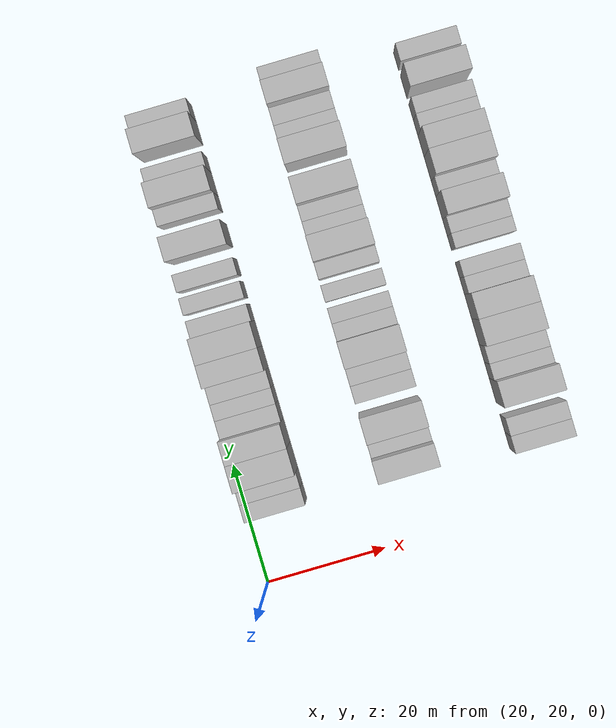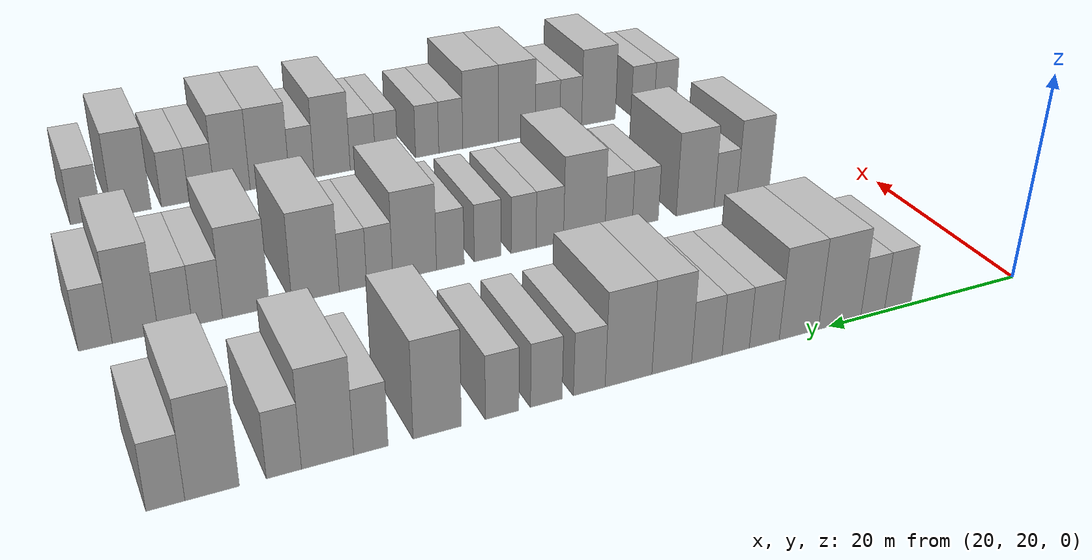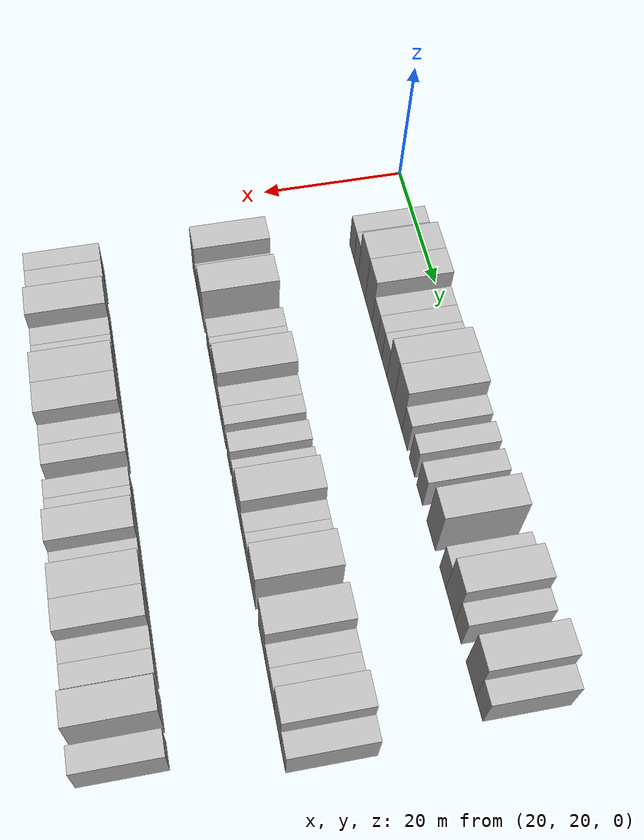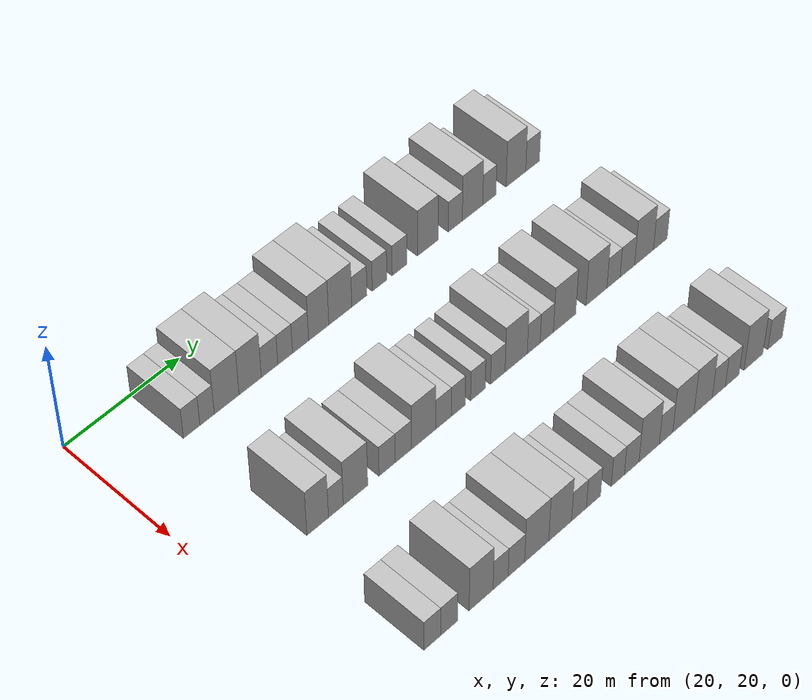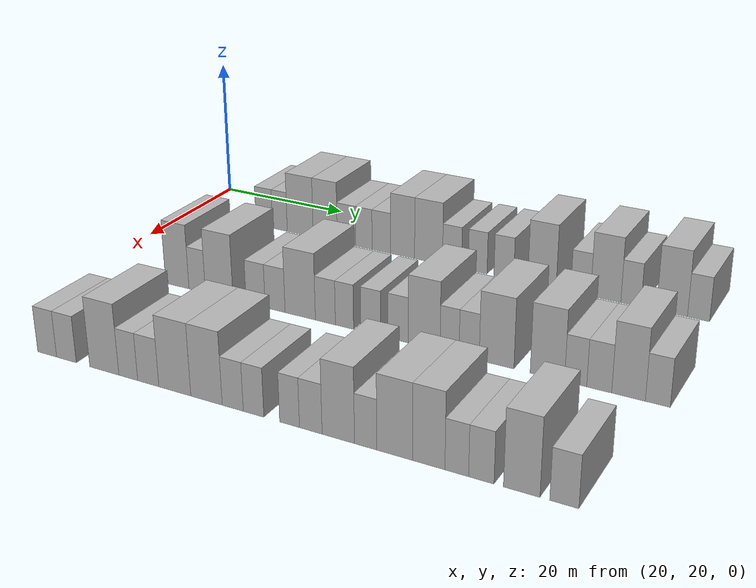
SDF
<sdf version="1.6">
 <world name="default">
  <model name="building_75">
   <static>1</static>
   <pose>25.0000 32.8421 0 0.000000 0.000000 0.000000</pose>
   <link name="link">
    <pose>0 0 3.00 0 0 0</pose>
    <collision name="collision"><geometry><box><size>10.0000 2.8491 6.0000</size></box></geometry></collision>
    <visual name="visual">
     <cast_shadows>0</cast_shadows>
     <geometry><box><size>10.0000 2.8491 6.0000</size></box></geometry>
     <material>
      <script>
       <uri>model://HANNAS_wall/materials/scripts</uri>
       <uri>model://HANNAS_wall/materials/textures</uri>
       <name>vrc/HANNAS_wall</name>
      </script>
     </material>
    </visual>
   </link>
  </model>
  <model name="building_76">
   <static>1</static>
   <pose>25.0000 35.5147 0 0.000000 0.000000 0.000000</pose>
   <link name="link">
    <pose>0 0 3.00 0 0 0</pose>
    <collision name="collision"><geometry><box><size>10.0000 2.4961 6.0000</size></box></geometry></collision>
    <visual name="visual">
     <cast_shadows>0</cast_shadows>
     <geometry><box><size>10.0000 2.4961 6.0000</size></box></geometry>
     <material>
      <script>
       <uri>model://HANNAS_wall/materials/scripts</uri>
       <uri>model://HANNAS_wall/materials/textures</uri>
       <name>vrc/HANNAS_wall</name>
      </script>
     </material>
    </visual>
   </link>
  </model>
  <model name="building_77">
   <static>1</static>
   <pose>25.0000 38.9422 0 0.000000 0.000000 0.000000</pose>
   <link name="link">
    <pose>0 0 4.50 0 0 0</pose>
    <collision name="collision"><geometry><box><size>10.0000 4.3588 9.0000</size></box></geometry></collision>
    <visual name="visual">
     <cast_shadows>0</cast_shadows>
     <geometry><box><size>10.0000 4.3588 9.0000</size></box></geometry>
     <material>
      <script>
       <uri>model://HANNAS_wall/materials/scripts</uri>
       <uri>model://HANNAS_wall/materials/textures</uri>
       <name>vrc/HANNAS_wall</name>
      </script>
     </material>
    </visual>
   </link>
  </model>
  <model name="building_78">
   <static>1</static>
   <pose>25.0000 43.1015 0 0.000000 0.000000 0.000000</pose>
   <link name="link">
    <pose>0 0 4.50 0 0 0</pose>
    <collision name="collision"><geometry><box><size>10.0000 3.9598 9.0000</size></box></geometry></collision>
    <visual name="visual">
     <cast_shadows>0</cast_shadows>
     <geometry><box><size>10.0000 3.9598 9.0000</size></box></geometry>
     <material>
      <script>
       <uri>model://HANNAS_wall/materials/scripts</uri>
       <uri>model://HANNAS_wall/materials/textures</uri>
       <name>vrc/HANNAS_wall</name>
      </script>
     </material>
    </visual>
   </link>
  </model>
  <model name="building_79">
   <static>1</static>
   <pose>25.0000 46.5578 0 0.000000 0.000000 0.000000</pose>
   <link name="link">
    <pose>0 0 3.00 0 0 0</pose>
    <collision name="collision"><geometry><box><size>10.0000 2.9530 6.0000</size></box></geometry></collision>
    <visual name="visual">
     <cast_shadows>0</cast_shadows>
     <geometry><box><size>10.0000 2.9530 6.0000</size></box></geometry>
     <material>
      <script>
       <uri>model://HANNAS_wall/materials/scripts</uri>
       <uri>model://HANNAS_wall/materials/textures</uri>
       <name>vrc/HANNAS_wall</name>
      </script>
     </material>
    </visual>
   </link>
  </model>
  <model name="building_80">
   <static>1</static>
   <pose>25.0000 49.3571 0 0.000000 0.000000 0.000000</pose>
   <link name="link">
    <pose>0 0 3.00 0 0 0</pose>
    <collision name="collision"><geometry><box><size>10.0000 2.6455 6.0000</size></box></geometry></collision>
    <visual name="visual">
     <cast_shadows>0</cast_shadows>
     <geometry><box><size>10.0000 2.6455 6.0000</size></box></geometry>
     <material>
      <script>
       <uri>model://HANNAS_wall/materials/scripts</uri>
       <uri>model://HANNAS_wall/materials/textures</uri>
       <name>vrc/HANNAS_wall</name>
      </script>
     </material>
    </visual>
   </link>
  </model>
  <model name="building_81">
   <static>1</static>
   <pose>25.0000 52.1397 0 0.000000 0.000000 0.000000</pose>
   <link name="link">
    <pose>0 0 3.00 0 0 0</pose>
    <collision name="collision"><geometry><box><size>10.0000 2.9199 6.0000</size></box></geometry></collision>
    <visual name="visual">
     <cast_shadows>0</cast_shadows>
     <geometry><box><size>10.0000 2.9199 6.0000</size></box></geometry>
     <material>
      <script>
       <uri>model://HANNAS_wall/materials/scripts</uri>
       <uri>model://HANNAS_wall/materials/textures</uri>
       <name>vrc/HANNAS_wall</name>
      </script>
     </material>
    </visual>
   </link>
  </model>
  <model name="building_82">
   <static>1</static>
   <pose>25.0000 55.4530 0 0.000000 0.000000 0.000000</pose>
   <link name="link">
    <pose>0 0 4.50 0 0 0</pose>
    <collision name="collision"><geometry><box><size>10.0000 3.7066 9.0000</size></box></geometry></collision>
    <visual name="visual">
     <cast_shadows>0</cast_shadows>
     <geometry><box><size>10.0000 3.7066 9.0000</size></box></geometry>
     <material>
      <script>
       <uri>model://HANNAS_wall/materials/scripts</uri>
       <uri>model://HANNAS_wall/materials/textures</uri>
       <name>vrc/HANNAS_wall</name>
      </script>
     </material>
    </visual>
   </link>
  </model>
  <model name="building_83">
   <static>1</static>
   <pose>25.0000 59.4381 0 0.000000 0.000000 0.000000</pose>
   <link name="link">
    <pose>0 0 4.50 0 0 0</pose>
    <collision name="collision"><geometry><box><size>10.0000 4.2636 9.0000</size></box></geometry></collision>
    <visual name="visual">
     <cast_shadows>0</cast_shadows>
     <geometry><box><size>10.0000 4.2636 9.0000</size></box></geometry>
     <material>
      <script>
       <uri>model://HANNAS_wall/materials/scripts</uri>
       <uri>model://HANNAS_wall/materials/textures</uri>
       <name>vrc/HANNAS_wall</name>
      </script>
     </material>
    </visual>
   </link>
  </model>
  <model name="building_84">
   <static>1</static>
   <pose>25.0000 62.9826 0 0.000000 0.000000 0.000000</pose>
   <link name="link">
    <pose>0 0 3.00 0 0 0</pose>
    <collision name="collision"><geometry><box><size>10.0000 2.8254 6.0000</size></box></geometry></collision>
    <visual name="visual">
     <cast_shadows>0</cast_shadows>
     <geometry><box><size>10.0000 2.8254 6.0000</size></box></geometry>
     <material>
      <script>
       <uri>model://HANNAS_wall/materials/scripts</uri>
       <uri>model://HANNAS_wall/materials/textures</uri>
       <name>vrc/HANNAS_wall</name>
      </script>
     </material>
    </visual>
   </link>
  </model>
  <model name="building_85">
   <static>1</static>
   <pose>25.0000 66.7705 0 0.000000 0.000000 0.000000</pose>
   <link name="link">
    <pose>0 0 3.00 0 0 0</pose>
    <collision name="collision"><geometry><box><size>10.0000 2.7503 6.0000</size></box></geometry></collision>
    <visual name="visual">
     <cast_shadows>0</cast_shadows>
     <geometry><box><size>10.0000 2.7503 6.0000</size></box></geometry>
     <material>
      <script>
       <uri>model://HANNAS_wall/materials/scripts</uri>
       <uri>model://HANNAS_wall/materials/textures</uri>
       <name>vrc/HANNAS_wall</name>
      </script>
     </material>
    </visual>
   </link>
  </model>
  <model name="building_86">
   <static>1</static>
   <pose>25.0000 70.5676 0 0.000000 0.000000 0.000000</pose>
   <link name="link">
    <pose>0 0 3.00 0 0 0</pose>
    <collision name="collision"><geometry><box><size>10.0000 2.8439 6.0000</size></box></geometry></collision>
    <visual name="visual">
     <cast_shadows>0</cast_shadows>
     <geometry><box><size>10.0000 2.8439 6.0000</size></box></geometry>
     <material>
      <script>
       <uri>model://HANNAS_wall/materials/scripts</uri>
       <uri>model://HANNAS_wall/materials/textures</uri>
       <name>vrc/HANNAS_wall</name>
      </script>
     </material>
    </visual>
   </link>
  </model>
  <model name="building_87">
   <static>1</static>
   <pose>25.0000 75.9713 0 0.000000 0.000000 0.000000</pose>
   <link name="link">
    <pose>0 0 4.50 0 0 0</pose>
    <collision name="collision"><geometry><box><size>10.0000 3.9636 9.0000</size></box></geometry></collision>
    <visual name="visual">
     <cast_shadows>0</cast_shadows>
     <geometry><box><size>10.0000 3.9636 9.0000</size></box></geometry>
     <material>
      <script>
       <uri>model://HANNAS_wall/materials/scripts</uri>
       <uri>model://HANNAS_wall/materials/textures</uri>
       <name>vrc/HANNAS_wall</name>
      </script>
     </material>
    </visual>
   </link>
  </model>
  <model name="building_88">
   <static>1</static>
   <pose>25.0000 81.3127 0 0.000000 0.000000 0.000000</pose>
   <link name="link">
    <pose>0 0 3.00 0 0 0</pose>
    <collision name="collision"><geometry><box><size>10.0000 2.7192 6.0000</size></box></geometry></collision>
    <visual name="visual">
     <cast_shadows>0</cast_shadows>
     <geometry><box><size>10.0000 2.7192 6.0000</size></box></geometry>
     <material>
      <script>
       <uri>model://HANNAS_wall/materials/scripts</uri>
       <uri>model://HANNAS_wall/materials/textures</uri>
       <name>vrc/HANNAS_wall</name>
      </script>
     </material>
    </visual>
   </link>
  </model>
  <model name="building_89">
   <static>1</static>
   <pose>25.0000 84.6875 0 0.000000 0.000000 0.000000</pose>
   <link name="link">
    <pose>0 0 4.50 0 0 0</pose>
    <collision name="collision"><geometry><box><size>10.0000 4.0303 9.0000</size></box></geometry></collision>
    <visual name="visual">
     <cast_shadows>0</cast_shadows>
     <geometry><box><size>10.0000 4.0303 9.0000</size></box></geometry>
     <material>
      <script>
       <uri>model://HANNAS_wall/materials/scripts</uri>
       <uri>model://HANNAS_wall/materials/textures</uri>
       <name>vrc/HANNAS_wall</name>
      </script>
     </material>
    </visual>
   </link>
  </model>
  <model name="building_90">
   <static>1</static>
   <pose>25.0000 88.0320 0 0.000000 0.000000 0.000000</pose>
   <link name="link">
    <pose>0 0 3.00 0 0 0</pose>
    <collision name="collision"><geometry><box><size>10.0000 2.6586 6.0000</size></box></geometry></collision>
    <visual name="visual">
     <cast_shadows>0</cast_shadows>
     <geometry><box><size>10.0000 2.6586 6.0000</size></box></geometry>
     <material>
      <script>
       <uri>model://HANNAS_wall/materials/scripts</uri>
       <uri>model://HANNAS_wall/materials/textures</uri>
       <name>vrc/HANNAS_wall</name>
      </script>
     </material>
    </visual>
   </link>
  </model>
  <model name="building_91">
   <static>1</static>
   <pose>25.0000 93.3398 0 0.000000 0.000000 0.000000</pose>
   <link name="link">
    <pose>0 0 4.50 0 0 0</pose>
    <collision name="collision"><geometry><box><size>10.0000 3.9570 9.0000</size></box></geometry></collision>
    <visual name="visual">
     <cast_shadows>0</cast_shadows>
     <geometry><box><size>10.0000 3.9570 9.0000</size></box></geometry>
     <material>
      <script>
       <uri>model://HANNAS_wall/materials/scripts</uri>
       <uri>model://HANNAS_wall/materials/textures</uri>
       <name>vrc/HANNAS_wall</name>
      </script>
     </material>
    </visual>
   </link>
  </model>
  <model name="building_92">
   <static>1</static>
   <pose>25.0000 96.7085 0 0.000000 0.000000 0.000000</pose>
   <link name="link">
    <pose>0 0 3.00 0 0 0</pose>
    <collision name="collision"><geometry><box><size>10.0000 2.7805 6.0000</size></box></geometry></collision>
    <visual name="visual">
     <cast_shadows>0</cast_shadows>
     <geometry><box><size>10.0000 2.7805 6.0000</size></box></geometry>
     <material>
      <script>
       <uri>model://HANNAS_wall/materials/scripts</uri>
       <uri>model://HANNAS_wall/materials/textures</uri>
       <name>vrc/HANNAS_wall</name>
      </script>
     </material>
    </visual>
   </link>
  </model>
  <model name="building_195">
   <static>1</static>
   <pose>47.0000 33.6591 0 0.000000 0.000000 0.000000</pose>
   <link name="link">
    <pose>0 0 4.50 0 0 0</pose>
    <collision name="collision"><geometry><box><size>10.0000 3.7395 9.0000</size></box></geometry></collision>
    <visual name="visual">
     <cast_shadows>0</cast_shadows>
     <geometry><box><size>10.0000 3.7395 9.0000</size></box></geometry>
     <material>
      <script>
       <uri>model://HANNAS_wall/materials/scripts</uri>
       <uri>model://HANNAS_wall/materials/textures</uri>
       <name>vrc/HANNAS_wall</name>
      </script>
     </material>
    </visual>
   </link>
  </model>
  <model name="building_196">
   <static>1</static>
   <pose>47.0000 36.8260 0 0.000000 0.000000 0.000000</pose>
   <link name="link">
    <pose>0 0 3.00 0 0 0</pose>
    <collision name="collision"><geometry><box><size>10.0000 2.5942 6.0000</size></box></geometry></collision>
    <visual name="visual">
     <cast_shadows>0</cast_shadows>
     <geometry><box><size>10.0000 2.5942 6.0000</size></box></geometry>
     <material>
      <script>
       <uri>model://HANNAS_wall/materials/scripts</uri>
       <uri>model://HANNAS_wall/materials/textures</uri>
       <name>vrc/HANNAS_wall</name>
      </script>
     </material>
    </visual>
   </link>
  </model>
  <model name="building_197">
   <static>1</static>
   <pose>47.0000 40.2798 0 0.000000 0.000000 0.000000</pose>
   <link name="link">
    <pose>0 0 4.50 0 0 0</pose>
    <collision name="collision"><geometry><box><size>10.0000 4.3134 9.0000</size></box></geometry></collision>
    <visual name="visual">
     <cast_shadows>0</cast_shadows>
     <geometry><box><size>10.0000 4.3134 9.0000</size></box></geometry>
     <material>
      <script>
       <uri>model://HANNAS_wall/materials/scripts</uri>
       <uri>model://HANNAS_wall/materials/textures</uri>
       <name>vrc/HANNAS_wall</name>
      </script>
     </material>
    </visual>
   </link>
  </model>
  <model name="building_198">
   <static>1</static>
   <pose>47.0000 45.8721 0 0.000000 0.000000 0.000000</pose>
   <link name="link">
    <pose>0 0 3.00 0 0 0</pose>
    <collision name="collision"><geometry><box><size>10.0000 2.8713 6.0000</size></box></geometry></collision>
    <visual name="visual">
     <cast_shadows>0</cast_shadows>
     <geometry><box><size>10.0000 2.8713 6.0000</size></box></geometry>
     <material>
      <script>
       <uri>model://HANNAS_wall/materials/scripts</uri>
       <uri>model://HANNAS_wall/materials/textures</uri>
       <name>vrc/HANNAS_wall</name>
      </script>
     </material>
    </visual>
   </link>
  </model>
  <model name="building_199">
   <static>1</static>
   <pose>47.0000 48.7853 0 0.000000 0.000000 0.000000</pose>
   <link name="link">
    <pose>0 0 3.00 0 0 0</pose>
    <collision name="collision"><geometry><box><size>10.0000 2.9551 6.0000</size></box></geometry></collision>
    <visual name="visual">
     <cast_shadows>0</cast_shadows>
     <geometry><box><size>10.0000 2.9551 6.0000</size></box></geometry>
     <material>
      <script>
       <uri>model://HANNAS_wall/materials/scripts</uri>
       <uri>model://HANNAS_wall/materials/textures</uri>
       <name>vrc/HANNAS_wall</name>
      </script>
     </material>
    </visual>
   </link>
  </model>
  <model name="building_200">
   <static>1</static>
   <pose>47.0000 52.4722 0 0.000000 0.000000 0.000000</pose>
   <link name="link">
    <pose>0 0 4.50 0 0 0</pose>
    <collision name="collision"><geometry><box><size>10.0000 4.4187 9.0000</size></box></geometry></collision>
    <visual name="visual">
     <cast_shadows>0</cast_shadows>
     <geometry><box><size>10.0000 4.4187 9.0000</size></box></geometry>
     <material>
      <script>
       <uri>model://HANNAS_wall/materials/scripts</uri>
       <uri>model://HANNAS_wall/materials/textures</uri>
       <name>vrc/HANNAS_wall</name>
      </script>
     </material>
    </visual>
   </link>
  </model>
  <model name="building_201">
   <static>1</static>
   <pose>47.0000 56.1122 0 0.000000 0.000000 0.000000</pose>
   <link name="link">
    <pose>0 0 3.00 0 0 0</pose>
    <collision name="collision"><geometry><box><size>10.0000 2.8612 6.0000</size></box></geometry></collision>
    <visual name="visual">
     <cast_shadows>0</cast_shadows>
     <geometry><box><size>10.0000 2.8612 6.0000</size></box></geometry>
     <material>
      <script>
       <uri>model://HANNAS_wall/materials/scripts</uri>
       <uri>model://HANNAS_wall/materials/textures</uri>
       <name>vrc/HANNAS_wall</name>
      </script>
     </material>
    </visual>
   </link>
  </model>
  <model name="building_202">
   <static>1</static>
   <pose>47.0000 58.8248 0 0.000000 0.000000 0.000000</pose>
   <link name="link">
    <pose>0 0 3.00 0 0 0</pose>
    <collision name="collision"><geometry><box><size>10.0000 2.5639 6.0000</size></box></geometry></collision>
    <visual name="visual">
     <cast_shadows>0</cast_shadows>
     <geometry><box><size>10.0000 2.5639 6.0000</size></box></geometry>
     <material>
      <script>
       <uri>model://HANNAS_wall/materials/scripts</uri>
       <uri>model://HANNAS_wall/materials/textures</uri>
       <name>vrc/HANNAS_wall</name>
      </script>
     </material>
    </visual>
   </link>
  </model>
  <model name="building_203">
   <static>1</static>
   <pose>47.0000 62.4689 0 0.000000 0.000000 0.000000</pose>
   <link name="link">
    <pose>0 0 3.00 0 0 0</pose>
    <collision name="collision"><geometry><box><size>10.0000 2.7244 6.0000</size></box></geometry></collision>
    <visual name="visual">
     <cast_shadows>0</cast_shadows>
     <geometry><box><size>10.0000 2.7244 6.0000</size></box></geometry>
     <material>
      <script>
       <uri>model://HANNAS_wall/materials/scripts</uri>
       <uri>model://HANNAS_wall/materials/textures</uri>
       <name>vrc/HANNAS_wall</name>
      </script>
     </material>
    </visual>
   </link>
  </model>
  <model name="building_204">
   <static>1</static>
   <pose>47.0000 66.1981 0 0.000000 0.000000 0.000000</pose>
   <link name="link">
    <pose>0 0 3.00 0 0 0</pose>
    <collision name="collision"><geometry><box><size>10.0000 2.7338 6.0000</size></box></geometry></collision>
    <visual name="visual">
     <cast_shadows>0</cast_shadows>
     <geometry><box><size>10.0000 2.7338 6.0000</size></box></geometry>
     <material>
      <script>
       <uri>model://HANNAS_wall/materials/scripts</uri>
       <uri>model://HANNAS_wall/materials/textures</uri>
       <name>vrc/HANNAS_wall</name>
      </script>
     </material>
    </visual>
   </link>
  </model>
  <model name="building_205">
   <static>1</static>
   <pose>47.0000 69.6799 0 0.000000 0.000000 0.000000</pose>
   <link name="link">
    <pose>0 0 4.50 0 0 0</pose>
    <collision name="collision"><geometry><box><size>10.0000 4.2299 9.0000</size></box></geometry></collision>
    <visual name="visual">
     <cast_shadows>0</cast_shadows>
     <geometry><box><size>10.0000 4.2299 9.0000</size></box></geometry>
     <material>
      <script>
       <uri>model://HANNAS_wall/materials/scripts</uri>
       <uri>model://HANNAS_wall/materials/textures</uri>
       <name>vrc/HANNAS_wall</name>
      </script>
     </material>
    </visual>
   </link>
  </model>
  <model name="building_206">
   <static>1</static>
   <pose>47.0000 73.0305 0 0.000000 0.000000 0.000000</pose>
   <link name="link">
    <pose>0 0 3.00 0 0 0</pose>
    <collision name="collision"><geometry><box><size>10.0000 2.4712 6.0000</size></box></geometry></collision>
    <visual name="visual">
     <cast_shadows>0</cast_shadows>
     <geometry><box><size>10.0000 2.4712 6.0000</size></box></geometry>
     <material>
      <script>
       <uri>model://HANNAS_wall/materials/scripts</uri>
       <uri>model://HANNAS_wall/materials/textures</uri>
       <name>vrc/HANNAS_wall</name>
      </script>
     </material>
    </visual>
   </link>
  </model>
  <model name="building_207">
   <static>1</static>
   <pose>47.0000 75.5539 0 0.000000 0.000000 0.000000</pose>
   <link name="link">
    <pose>0 0 3.00 0 0 0</pose>
    <collision name="collision"><geometry><box><size>10.0000 2.5758 6.0000</size></box></geometry></collision>
    <visual name="visual">
     <cast_shadows>0</cast_shadows>
     <geometry><box><size>10.0000 2.5758 6.0000</size></box></geometry>
     <material>
      <script>
       <uri>model://HANNAS_wall/materials/scripts</uri>
       <uri>model://HANNAS_wall/materials/textures</uri>
       <name>vrc/HANNAS_wall</name>
      </script>
     </material>
    </visual>
   </link>
  </model>
  <model name="building_208">
   <static>1</static>
   <pose>47.0000 79.0236 0 0.000000 0.000000 0.000000</pose>
   <link name="link">
    <pose>0 0 4.50 0 0 0</pose>
    <collision name="collision"><geometry><box><size>10.0000 4.3635 9.0000</size></box></geometry></collision>
    <visual name="visual">
     <cast_shadows>0</cast_shadows>
     <geometry><box><size>10.0000 4.3635 9.0000</size></box></geometry>
     <material>
      <script>
       <uri>model://HANNAS_wall/materials/scripts</uri>
       <uri>model://HANNAS_wall/materials/textures</uri>
       <name>vrc/HANNAS_wall</name>
      </script>
     </material>
    </visual>
   </link>
  </model>
  <model name="building_209">
   <static>1</static>
   <pose>47.0000 85.2866 0 0.000000 0.000000 0.000000</pose>
   <link name="link">
    <pose>0 0 4.50 0 0 0</pose>
    <collision name="collision"><geometry><box><size>10.0000 4.1626 9.0000</size></box></geometry></collision>
    <visual name="visual">
     <cast_shadows>0</cast_shadows>
     <geometry><box><size>10.0000 4.1626 9.0000</size></box></geometry>
     <material>
      <script>
       <uri>model://HANNAS_wall/materials/scripts</uri>
       <uri>model://HANNAS_wall/materials/textures</uri>
       <name>vrc/HANNAS_wall</name>
      </script>
     </material>
    </visual>
   </link>
  </model>
  <model name="building_210">
   <static>1</static>
   <pose>47.0000 88.6798 0 0.000000 0.000000 0.000000</pose>
   <link name="link">
    <pose>0 0 3.00 0 0 0</pose>
    <collision name="collision"><geometry><box><size>10.0000 2.6237 6.0000</size></box></geometry></collision>
    <visual name="visual">
     <cast_shadows>0</cast_shadows>
     <geometry><box><size>10.0000 2.6237 6.0000</size></box></geometry>
     <material>
      <script>
       <uri>model://HANNAS_wall/materials/scripts</uri>
       <uri>model://HANNAS_wall/materials/textures</uri>
       <name>vrc/HANNAS_wall</name>
      </script>
     </material>
    </visual>
   </link>
  </model>
  <model name="building_211">
   <static>1</static>
   <pose>47.0000 91.4454 0 0.000000 0.000000 0.000000</pose>
   <link name="link">
    <pose>0 0 3.00 0 0 0</pose>
    <collision name="collision"><geometry><box><size>10.0000 2.9075 6.0000</size></box></geometry></collision>
    <visual name="visual">
     <cast_shadows>0</cast_shadows>
     <geometry><box><size>10.0000 2.9075 6.0000</size></box></geometry>
     <material>
      <script>
       <uri>model://HANNAS_wall/materials/scripts</uri>
       <uri>model://HANNAS_wall/materials/textures</uri>
       <name>vrc/HANNAS_wall</name>
      </script>
     </material>
    </visual>
   </link>
  </model>
  <model name="building_212">
   <static>1</static>
   <pose>47.0000 94.8217 0 0.000000 0.000000 0.000000</pose>
   <link name="link">
    <pose>0 0 4.50 0 0 0</pose>
    <collision name="collision"><geometry><box><size>10.0000 3.8452 9.0000</size></box></geometry></collision>
    <visual name="visual">
     <cast_shadows>0</cast_shadows>
     <geometry><box><size>10.0000 3.8452 9.0000</size></box></geometry>
     <material>
      <script>
       <uri>model://HANNAS_wall/materials/scripts</uri>
       <uri>model://HANNAS_wall/materials/textures</uri>
       <name>vrc/HANNAS_wall</name>
      </script>
     </material>
    </visual>
   </link>
  </model>
  <model name="building_213">
   <static>1</static>
   <pose>47.0000 98.1438 0 0.000000 0.000000 0.000000</pose>
   <link name="link">
    <pose>0 0 3.00 0 0 0</pose>
    <collision name="collision"><geometry><box><size>10.0000 2.7991 6.0000</size></box></geometry></collision>
    <visual name="visual">
     <cast_shadows>0</cast_shadows>
     <geometry><box><size>10.0000 2.7991 6.0000</size></box></geometry>
     <material>
      <script>
       <uri>model://HANNAS_wall/materials/scripts</uri>
       <uri>model://HANNAS_wall/materials/textures</uri>
       <name>vrc/HANNAS_wall</name>
      </script>
     </material>
    </visual>
   </link>
  </model>
  <model name="building_316">
   <static>1</static>
   <pose>69.0000 31.2672 0 0.000000 0.000000 0.000000</pose>
   <link name="link">
    <pose>0 0 3.00 0 0 0</pose>
    <collision name="collision"><geometry><box><size>10.0000 2.8651 6.0000</size></box></geometry></collision>
    <visual name="visual">
     <cast_shadows>0</cast_shadows>
     <geometry><box><size>10.0000 2.8651 6.0000</size></box></geometry>
     <material>
      <script>
       <uri>model://HANNAS_wall/materials/scripts</uri>
       <uri>model://HANNAS_wall/materials/textures</uri>
       <name>vrc/HANNAS_wall</name>
      </script>
     </material>
    </visual>
   </link>
  </model>
  <model name="building_317">
   <static>1</static>
   <pose>69.0000 34.1753 0 0.000000 0.000000 0.000000</pose>
   <link name="link">
    <pose>0 0 3.00 0 0 0</pose>
    <collision name="collision"><geometry><box><size>10.0000 2.9511 6.0000</size></box></geometry></collision>
    <visual name="visual">
     <cast_shadows>0</cast_shadows>
     <geometry><box><size>10.0000 2.9511 6.0000</size></box></geometry>
     <material>
      <script>
       <uri>model://HANNAS_wall/materials/scripts</uri>
       <uri>model://HANNAS_wall/materials/textures</uri>
       <name>vrc/HANNAS_wall</name>
      </script>
     </material>
    </visual>
   </link>
  </model>
  <model name="building_318">
   <static>1</static>
   <pose>69.0000 39.7602 0 0.000000 0.000000 0.000000</pose>
   <link name="link">
    <pose>0 0 4.50 0 0 0</pose>
    <collision name="collision"><geometry><box><size>10.0000 4.2187 9.0000</size></box></geometry></collision>
    <visual name="visual">
     <cast_shadows>0</cast_shadows>
     <geometry><box><size>10.0000 4.2187 9.0000</size></box></geometry>
     <material>
      <script>
       <uri>model://HANNAS_wall/materials/scripts</uri>
       <uri>model://HANNAS_wall/materials/textures</uri>
       <name>vrc/HANNAS_wall</name>
      </script>
     </material>
    </visual>
   </link>
  </model>
  <model name="building_319">
   <static>1</static>
   <pose>69.0000 43.2076 0 0.000000 0.000000 0.000000</pose>
   <link name="link">
    <pose>0 0 3.00 0 0 0</pose>
    <collision name="collision"><geometry><box><size>10.0000 2.6763 6.0000</size></box></geometry></collision>
    <visual name="visual">
     <cast_shadows>0</cast_shadows>
     <geometry><box><size>10.0000 2.6763 6.0000</size></box></geometry>
     <material>
      <script>
       <uri>model://HANNAS_wall/materials/scripts</uri>
       <uri>model://HANNAS_wall/materials/textures</uri>
       <name>vrc/HANNAS_wall</name>
      </script>
     </material>
    </visual>
   </link>
  </model>
  <model name="building_320">
   <static>1</static>
   <pose>69.0000 46.0286 0 0.000000 0.000000 0.000000</pose>
   <link name="link">
    <pose>0 0 3.00 0 0 0</pose>
    <collision name="collision"><geometry><box><size>10.0000 2.9657 6.0000</size></box></geometry></collision>
    <visual name="visual">
     <cast_shadows>0</cast_shadows>
     <geometry><box><size>10.0000 2.9657 6.0000</size></box></geometry>
     <material>
      <script>
       <uri>model://HANNAS_wall/materials/scripts</uri>
       <uri>model://HANNAS_wall/materials/textures</uri>
       <name>vrc/HANNAS_wall</name>
      </script>
     </material>
    </visual>
   </link>
  </model>
  <model name="building_321">
   <static>1</static>
   <pose>69.0000 49.6975 0 0.000000 0.000000 0.000000</pose>
   <link name="link">
    <pose>0 0 4.50 0 0 0</pose>
    <collision name="collision"><geometry><box><size>10.0000 4.3722 9.0000</size></box></geometry></collision>
    <visual name="visual">
     <cast_shadows>0</cast_shadows>
     <geometry><box><size>10.0000 4.3722 9.0000</size></box></geometry>
     <material>
      <script>
       <uri>model://HANNAS_wall/materials/scripts</uri>
       <uri>model://HANNAS_wall/materials/textures</uri>
       <name>vrc/HANNAS_wall</name>
      </script>
     </material>
    </visual>
   </link>
  </model>
  <model name="building_322">
   <static>1</static>
   <pose>69.0000 53.9767 0 0.000000 0.000000 0.000000</pose>
   <link name="link">
    <pose>0 0 4.50 0 0 0</pose>
    <collision name="collision"><geometry><box><size>10.0000 4.1861 9.0000</size></box></geometry></collision>
    <visual name="visual">
     <cast_shadows>0</cast_shadows>
     <geometry><box><size>10.0000 4.1861 9.0000</size></box></geometry>
     <material>
      <script>
       <uri>model://HANNAS_wall/materials/scripts</uri>
       <uri>model://HANNAS_wall/materials/textures</uri>
       <name>vrc/HANNAS_wall</name>
      </script>
     </material>
    </visual>
   </link>
  </model>
  <model name="building_323">
   <static>1</static>
   <pose>69.0000 57.4448 0 0.000000 0.000000 0.000000</pose>
   <link name="link">
    <pose>0 0 3.00 0 0 0</pose>
    <collision name="collision"><geometry><box><size>10.0000 2.7499 6.0000</size></box></geometry></collision>
    <visual name="visual">
     <cast_shadows>0</cast_shadows>
     <geometry><box><size>10.0000 2.7499 6.0000</size></box></geometry>
     <material>
      <script>
       <uri>model://HANNAS_wall/materials/scripts</uri>
       <uri>model://HANNAS_wall/materials/textures</uri>
       <name>vrc/HANNAS_wall</name>
      </script>
     </material>
    </visual>
   </link>
  </model>
  <model name="building_324">
   <static>1</static>
   <pose>69.0000 60.1405 0 0.000000 0.000000 0.000000</pose>
   <link name="link">
    <pose>0 0 3.00 0 0 0</pose>
    <collision name="collision"><geometry><box><size>10.0000 2.6415 6.0000</size></box></geometry></collision>
    <visual name="visual">
     <cast_shadows>0</cast_shadows>
     <geometry><box><size>10.0000 2.6415 6.0000</size></box></geometry>
     <material>
      <script>
       <uri>model://HANNAS_wall/materials/scripts</uri>
       <uri>model://HANNAS_wall/materials/textures</uri>
       <name>vrc/HANNAS_wall</name>
      </script>
     </material>
    </visual>
   </link>
  </model>
  <model name="building_325">
   <static>1</static>
   <pose>69.0000 64.6922 0 0.000000 0.000000 0.000000</pose>
   <link name="link">
    <pose>0 0 3.00 0 0 0</pose>
    <collision name="collision"><geometry><box><size>10.0000 2.4620 6.0000</size></box></geometry></collision>
    <visual name="visual">
     <cast_shadows>0</cast_shadows>
     <geometry><box><size>10.0000 2.4620 6.0000</size></box></geometry>
     <material>
      <script>
       <uri>model://HANNAS_wall/materials/scripts</uri>
       <uri>model://HANNAS_wall/materials/textures</uri>
       <name>vrc/HANNAS_wall</name>
      </script>
     </material>
    </visual>
   </link>
  </model>
  <model name="building_326">
   <static>1</static>
   <pose>69.0000 67.3125 0 0.000000 0.000000 0.000000</pose>
   <link name="link">
    <pose>0 0 3.00 0 0 0</pose>
    <collision name="collision"><geometry><box><size>10.0000 2.7784 6.0000</size></box></geometry></collision>
    <visual name="visual">
     <cast_shadows>0</cast_shadows>
     <geometry><box><size>10.0000 2.7784 6.0000</size></box></geometry>
     <material>
      <script>
       <uri>model://HANNAS_wall/materials/scripts</uri>
       <uri>model://HANNAS_wall/materials/textures</uri>
       <name>vrc/HANNAS_wall</name>
      </script>
     </material>
    </visual>
   </link>
  </model>
  <model name="building_327">
   <static>1</static>
   <pose>69.0000 70.6482 0 0.000000 0.000000 0.000000</pose>
   <link name="link">
    <pose>0 0 4.50 0 0 0</pose>
    <collision name="collision"><geometry><box><size>10.0000 3.8930 9.0000</size></box></geometry></collision>
    <visual name="visual">
     <cast_shadows>0</cast_shadows>
     <geometry><box><size>10.0000 3.8930 9.0000</size></box></geometry>
     <material>
      <script>
       <uri>model://HANNAS_wall/materials/scripts</uri>
       <uri>model://HANNAS_wall/materials/textures</uri>
       <name>vrc/HANNAS_wall</name>
      </script>
     </material>
    </visual>
   </link>
  </model>
  <model name="building_328">
   <static>1</static>
   <pose>69.0000 73.9037 0 0.000000 0.000000 0.000000</pose>
   <link name="link">
    <pose>0 0 3.00 0 0 0</pose>
    <collision name="collision"><geometry><box><size>10.0000 2.6180 6.0000</size></box></geometry></collision>
    <visual name="visual">
     <cast_shadows>0</cast_shadows>
     <geometry><box><size>10.0000 2.6180 6.0000</size></box></geometry>
     <material>
      <script>
       <uri>model://HANNAS_wall/materials/scripts</uri>
       <uri>model://HANNAS_wall/materials/textures</uri>
       <name>vrc/HANNAS_wall</name>
      </script>
     </material>
    </visual>
   </link>
  </model>
  <model name="building_329">
   <static>1</static>
   <pose>69.0000 77.2627 0 0.000000 0.000000 0.000000</pose>
   <link name="link">
    <pose>0 0 4.50 0 0 0</pose>
    <collision name="collision"><geometry><box><size>10.0000 4.0999 9.0000</size></box></geometry></collision>
    <visual name="visual">
     <cast_shadows>0</cast_shadows>
     <geometry><box><size>10.0000 4.0999 9.0000</size></box></geometry>
     <material>
      <script>
       <uri>model://HANNAS_wall/materials/scripts</uri>
       <uri>model://HANNAS_wall/materials/textures</uri>
       <name>vrc/HANNAS_wall</name>
      </script>
     </material>
    </visual>
   </link>
  </model>
  <model name="building_330">
   <static>1</static>
   <pose>69.0000 81.1264 0 0.000000 0.000000 0.000000</pose>
   <link name="link">
    <pose>0 0 4.50 0 0 0</pose>
    <collision name="collision"><geometry><box><size>10.0000 3.6277 9.0000</size></box></geometry></collision>
    <visual name="visual">
     <cast_shadows>0</cast_shadows>
     <geometry><box><size>10.0000 3.6277 9.0000</size></box></geometry>
     <material>
      <script>
       <uri>model://HANNAS_wall/materials/scripts</uri>
       <uri>model://HANNAS_wall/materials/textures</uri>
       <name>vrc/HANNAS_wall</name>
      </script>
     </material>
    </visual>
   </link>
  </model>
  <model name="building_331">
   <static>1</static>
   <pose>69.0000 84.2389 0 0.000000 0.000000 0.000000</pose>
   <link name="link">
    <pose>0 0 3.00 0 0 0</pose>
    <collision name="collision"><geometry><box><size>10.0000 2.5972 6.0000</size></box></geometry></collision>
    <visual name="visual">
     <cast_shadows>0</cast_shadows>
     <geometry><box><size>10.0000 2.5972 6.0000</size></box></geometry>
     <material>
      <script>
       <uri>model://HANNAS_wall/materials/scripts</uri>
       <uri>model://HANNAS_wall/materials/textures</uri>
       <name>vrc/HANNAS_wall</name>
      </script>
     </material>
    </visual>
   </link>
  </model>
  <model name="building_332">
   <static>1</static>
   <pose>69.0000 86.9080 0 0.000000 0.000000 0.000000</pose>
   <link name="link">
    <pose>0 0 3.00 0 0 0</pose>
    <collision name="collision"><geometry><box><size>10.0000 2.7411 6.0000</size></box></geometry></collision>
    <visual name="visual">
     <cast_shadows>0</cast_shadows>
     <geometry><box><size>10.0000 2.7411 6.0000</size></box></geometry>
     <material>
      <script>
       <uri>model://HANNAS_wall/materials/scripts</uri>
       <uri>model://HANNAS_wall/materials/textures</uri>
       <name>vrc/HANNAS_wall</name>
      </script>
     </material>
    </visual>
   </link>
  </model>
  <model name="building_333">
   <static>1</static>
   <pose>69.0000 91.1906 0 0.000000 0.000000 0.000000</pose>
   <link name="link">
    <pose>0 0 4.50 0 0 0</pose>
    <collision name="collision"><geometry><box><size>10.0000 3.8239 9.0000</size></box></geometry></collision>
    <visual name="visual">
     <cast_shadows>0</cast_shadows>
     <geometry><box><size>10.0000 3.8239 9.0000</size></box></geometry>
     <material>
      <script>
       <uri>model://HANNAS_wall/materials/scripts</uri>
       <uri>model://HANNAS_wall/materials/textures</uri>
       <name>vrc/HANNAS_wall</name>
      </script>
     </material>
    </visual>
   </link>
  </model>
  <model name="building_334">
   <static>1</static>
   <pose>69.0000 95.5839 0 0.000000 0.000000 0.000000</pose>
   <link name="link">
    <pose>0 0 3.00 0 0 0</pose>
    <collision name="collision"><geometry><box><size>10.0000 2.9628 6.0000</size></box></geometry></collision>
    <visual name="visual">
     <cast_shadows>0</cast_shadows>
     <geometry><box><size>10.0000 2.9628 6.0000</size></box></geometry>
     <material>
      <script>
       <uri>model://HANNAS_wall/materials/scripts</uri>
       <uri>model://HANNAS_wall/materials/textures</uri>
       <name>vrc/HANNAS_wall</name>
      </script>
     </material>
    </visual>
   </link>
  </model>
 </world>
</sdf>
